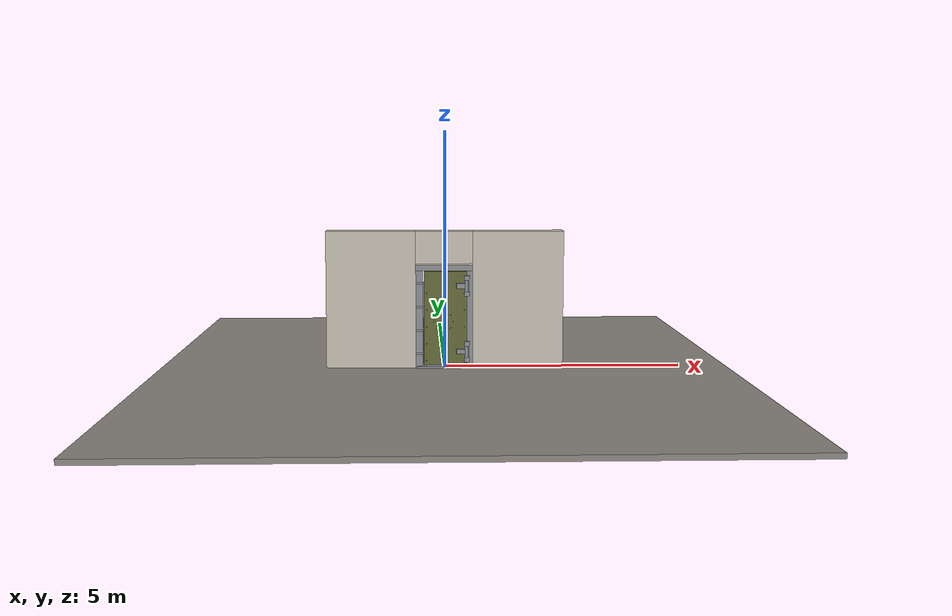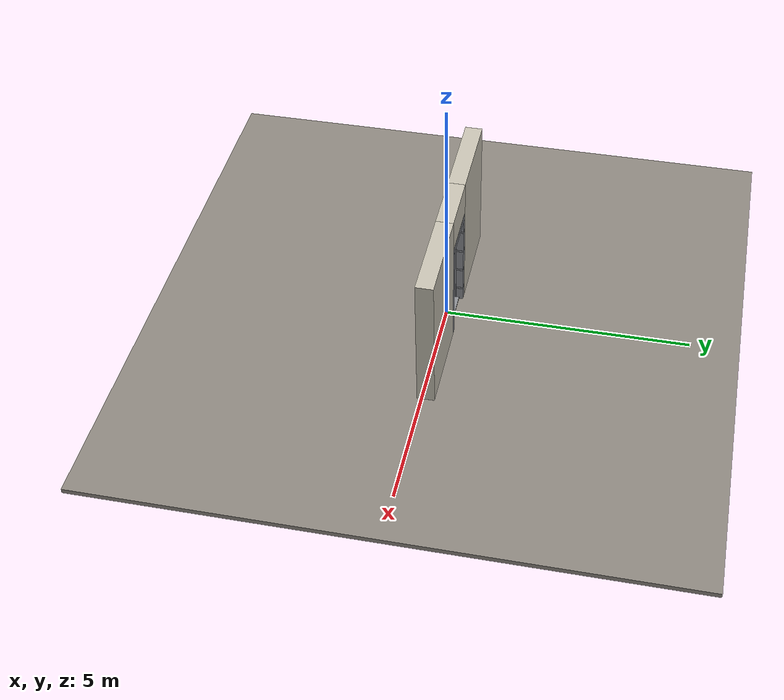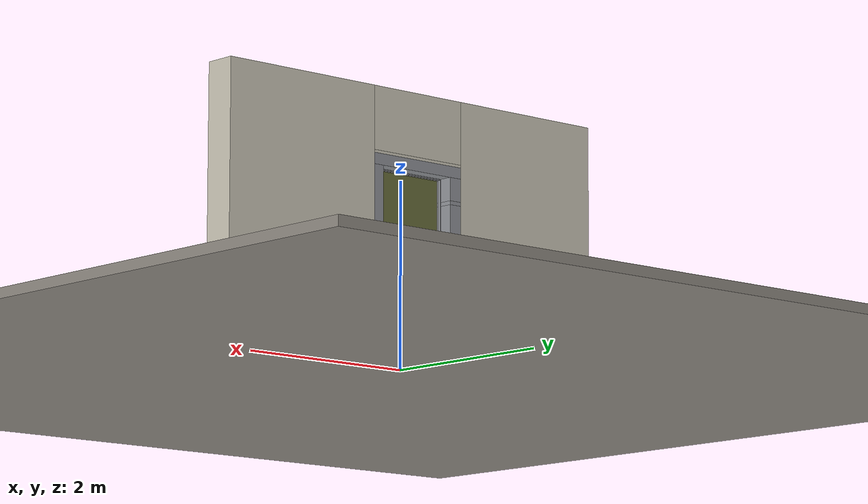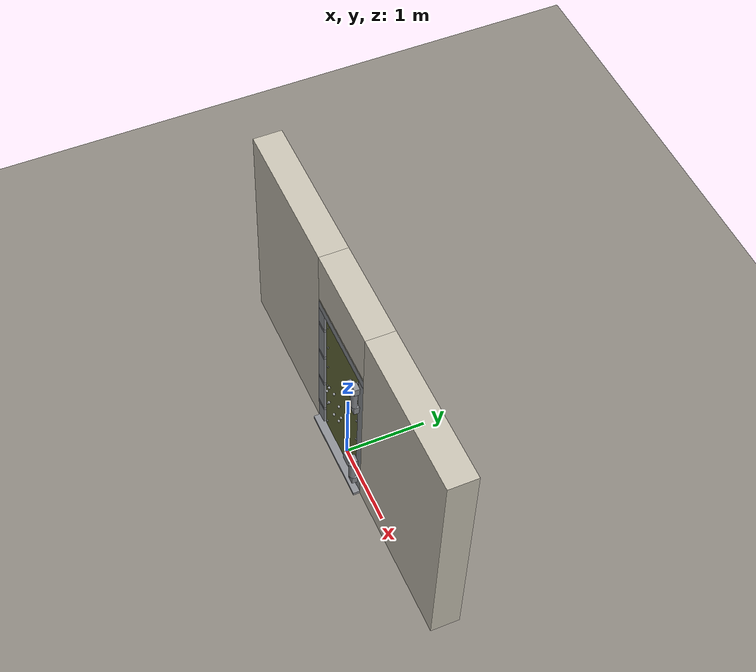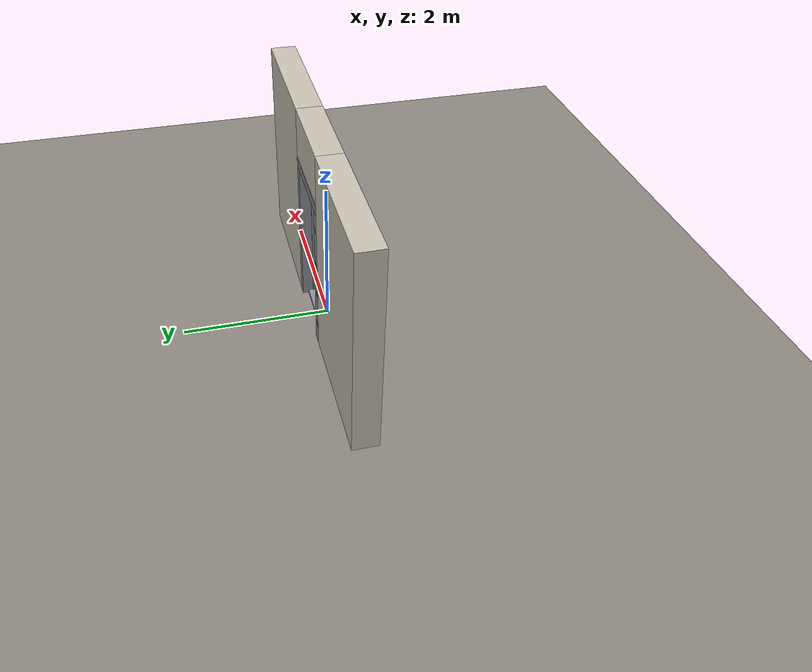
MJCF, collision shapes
<?xml version="1.0" ?>
<mujoco model="db0913_vault_full">
  <compiler angle="radian" meshdir="../../hardware" texturedir="../../textures" autolimits="true" inertiafromgeom="false"/>
  <option timestep="0.002" integrator="implicitfast" cone="elliptic" impratio="10" noslip_iterations="3">
    <flag multiccd="enable"/>
  </option>
  <size memory="16M"/>
  <default>
    <geom condim="4" solref="0.005 1" solimp="0.95 0.99 0.001"/>
    <joint solreflimit="0.005 1" solimplimit="0.95 0.99 0.001"/>
    <tendon solreflimit="0.005 1"/>
    <equality solref="0.002 1"/>
  </default>
  <visual>
    <headlight ambient="0.4 0.4 0.4" diffuse="0.7 0.7 0.7" specular="0.2 0.2 0.2"/>
    <quality shadowsize="4096"/>
    <map znear="0.01" zfar="60"/>
  </visual>
  <asset>
    <mesh name="wheel_3a0bfbe305" file="wheel_3a0bfbe305.obj"/>
    <material name="mat_floor" rgba="0.55 0.53 0.5 1" specular="0.2" shininess="0.15" reflectance="0"/>
    <material name="mat_wall" rgba="0.78 0.76 0.7 1" specular="0.2" shininess="0.1" reflectance="0"/>
    <material name="mat_leaf" rgba="0.4 0.42 0.22 1" specular="0.23" shininess="0.56" reflectance="0.02"/>
    <material name="mat_rivet" rgba="0.55 0.56 0.58 1" specular="0.8" shininess="0.55" reflectance="0.4"/>
    <material name="mat_op_stainless" rgba="0.75 0.76 0.77 1" specular="0.8" shininess="0.65" reflectance="0.4"/>
    <material name="mat_trim" rgba="0.85 0.66 0.3 1" specular="0.8" shininess="0.75" reflectance="0.4"/>
    <material name="mat_vault_bolt" rgba="0.75 0.76 0.77 1" specular="0.8" shininess="0.65" reflectance="0.4"/>
    <material name="mat_frame" rgba="0.55 0.56 0.58 1" specular="0.8" shininess="0.55" reflectance="0.4"/>
    <material name="mat_seal" rgba="0.1 0.1 0.1 1" specular="0.2" shininess="0.1" reflectance="0"/>
    <material name="mat_hinge" rgba="0.55 0.56 0.58 1" specular="0.8" shininess="0.55" reflectance="0.4"/>
    <texture name="skybox" type="skybox" builtin="gradient" rgb1="0.6 0.7 0.85" rgb2="0.9 0.92 0.95" width="256" height="256"/>
  </asset>
  <worldbody>
    <light name="sun" pos="1.5 -2.5 4" dir="-0.3 0.5 -0.8" directional="true" diffuse="0.8 0.8 0.8" specular="0.3 0.3 0.3" castshadow="true"/>
    <light name="fill" pos="-1.5 2.5 3" dir="0.3 -0.5 -0.7" directional="true" diffuse="0.35 0.35 0.4" castshadow="false"/>
    <camera name="robot_view" pos="0 -2.485625 1.753375" xyaxes="1 0 0 0 0.26963 0.962964" fovy="52"/>
    <camera name="far_view" pos="0 2.645625 1.753375" xyaxes="-1 0 0 0 -0.26963 0.962964" fovy="52"/>
    <camera name="iso" pos="-1.949875 -2.075125 2.163875" xyaxes="0.741536 -0.670913 0 0.242917 0.268487 0.932151" fovy="46"/>
    <camera name="detail_handle" pos="0.1465 -0.955 1.48" xyaxes="0.97561 0.219512 0 -0.070934 0.315262 0.94635" fovy="38"/>
    <geom name="floor" type="box" size="6 6 0.05" pos="0 0 -0.05" material="mat_floor" group="0" contype="1" conaffinity="1" friction="0.8 0.005 0.0001" density="2400"/>
    <geom name="wall_left" type="box" size="0.94125 0.175 1.45" pos="-1.55875 0.08 1.45" material="mat_wall" group="0" contype="1" conaffinity="1" friction="0.6 0.005 0.0001" density="800"/>
    <geom name="wall_right" type="box" size="0.95625 0.175 1.45" pos="1.54375 0.08 1.45" material="mat_wall" group="0" contype="1" conaffinity="1" friction="0.6 0.005 0.0001" density="800"/>
    <geom name="wall_header" type="box" size="0.6025 0.175 0.34" pos="-0.015 0.08 2.56" material="mat_wall" group="0" contype="1" conaffinity="1" friction="0.6 0.005 0.0001" density="800"/>
    <geom name="jamb_hinge" type="box" size="0.06 0.175 1.035" pos="0.5275 0.08 1.035" material="mat_frame" group="0" contype="1" conaffinity="1" friction="0.6 0.005 0.0001" density="300"/>
    <geom name="strike_300_wall_n" type="box" size="0.075 0.1185 0.021" pos="-0.5425 0.1365 0.3" material="mat_frame" group="0" contype="1" conaffinity="1" friction="0.6 0.005 0.0001" density="300"/>
    <geom name="strike_300_wall_p" type="box" size="0.075 0.0385 0.021" pos="-0.5425 -0.0565 0.3" material="mat_frame" group="0" contype="1" conaffinity="1" friction="0.6 0.005 0.0001" density="300"/>
    <geom name="strike_300_back" type="box" size="0.0395 0.018 0.021" pos="-0.578 0 0.3" material="mat_frame" group="0" contype="1" conaffinity="1" friction="0.6 0.005 0.0001" density="300"/>
    <geom name="strike_800_wall_n" type="box" size="0.075 0.1185 0.021" pos="-0.5425 0.1365 0.8" material="mat_frame" group="0" contype="1" conaffinity="1" friction="0.6 0.005 0.0001" density="300"/>
    <geom name="strike_800_wall_p" type="box" size="0.075 0.0385 0.021" pos="-0.5425 -0.0565 0.8" material="mat_frame" group="0" contype="1" conaffinity="1" friction="0.6 0.005 0.0001" density="300"/>
    <geom name="strike_800_back" type="box" size="0.0395 0.018 0.021" pos="-0.578 0 0.8" material="mat_frame" group="0" contype="1" conaffinity="1" friction="0.6 0.005 0.0001" density="300"/>
    <geom name="strike_1300_wall_n" type="box" size="0.075 0.1185 0.021" pos="-0.5425 0.1365 1.3" material="mat_frame" group="0" contype="1" conaffinity="1" friction="0.6 0.005 0.0001" density="300"/>
    <geom name="strike_1300_wall_p" type="box" size="0.075 0.0385 0.021" pos="-0.5425 -0.0565 1.3" material="mat_frame" group="0" contype="1" conaffinity="1" friction="0.6 0.005 0.0001" density="300"/>
    <geom name="strike_1300_back" type="box" size="0.0395 0.018 0.021" pos="-0.578 0 1.3" material="mat_frame" group="0" contype="1" conaffinity="1" friction="0.6 0.005 0.0001" density="300"/>
    <geom name="strike_1800_wall_n" type="box" size="0.075 0.1185 0.021" pos="-0.5425 0.1365 1.8" material="mat_frame" group="0" contype="1" conaffinity="1" friction="0.6 0.005 0.0001" density="300"/>
    <geom name="strike_1800_wall_p" type="box" size="0.075 0.0385 0.021" pos="-0.5425 -0.0565 1.8" material="mat_frame" group="0" contype="1" conaffinity="1" friction="0.6 0.005 0.0001" density="300"/>
    <geom name="strike_1800_back" type="box" size="0.0395 0.018 0.021" pos="-0.578 0 1.8" material="mat_frame" group="0" contype="1" conaffinity="1" friction="0.6 0.005 0.0001" density="300"/>
    <geom name="jamb_strike_0" type="box" size="0.075 0.175 0.1395" pos="-0.5425 0.08 0.1395" material="mat_frame" group="0" contype="1" conaffinity="1" friction="0.6 0.005 0.0001" density="300"/>
    <geom name="jamb_strike_1" type="box" size="0.075 0.175 0.229" pos="-0.5425 0.08 0.55" material="mat_frame" group="0" contype="1" conaffinity="1" friction="0.6 0.005 0.0001" density="300"/>
    <geom name="jamb_strike_2" type="box" size="0.075 0.175 0.229" pos="-0.5425 0.08 1.05" material="mat_frame" group="0" contype="1" conaffinity="1" friction="0.6 0.005 0.0001" density="300"/>
    <geom name="jamb_strike_3" type="box" size="0.075 0.175 0.229" pos="-0.5425 0.08 1.55" material="mat_frame" group="0" contype="1" conaffinity="1" friction="0.6 0.005 0.0001" density="300"/>
    <geom name="jamb_strike_4" type="box" size="0.075 0.175 0.1245" pos="-0.5425 0.08 1.9455" material="mat_frame" group="0" contype="1" conaffinity="1" friction="0.6 0.005 0.0001" density="300"/>
    <geom name="jamb_head" type="box" size="0.6025 0.175 0.06" pos="-0.015 0.08 2.13" material="mat_frame" group="0" contype="1" conaffinity="1" friction="0.6 0.005 0.0001" density="300"/>
    <geom name="head_stud" type="box" size="0.6025 0.175 0.015" pos="-0.015 0.08 2.205" material="mat_wall" group="0" contype="1" conaffinity="1" friction="0.6 0.005 0.0001" density="500"/>
    <geom name="stop_hinge" type="box" size="0.0055 0.016 1.035" pos="0.462 0.0915 1.035" material="mat_frame" group="0" contype="1" conaffinity="1" friction="0.6 0.005 0.0001" density="300"/>
    <geom name="stop_strike" type="box" size="0.0055 0.016 1.035" pos="-0.462 0.0915 1.035" material="mat_frame" group="0" contype="1" conaffinity="1" friction="0.6 0.005 0.0001" density="300"/>
    <geom name="stop_head" type="box" size="0.4675 0.016 0.0055" pos="0 0.0915 2.0645" material="mat_frame" group="0" contype="1" conaffinity="1" friction="0.6 0.005 0.0001" density="300"/>
    <geom name="seal_hinge" type="box" size="0.004 0.006 1.035" pos="0.4645 0.081 1.035" material="mat_seal" group="1" contype="0" conaffinity="0" density="1100"/>
    <geom name="seal_strike" type="box" size="0.004 0.006 1.035" pos="-0.4645 0.081 1.035" material="mat_seal" group="1" contype="0" conaffinity="0" density="1100"/>
    <geom name="seal_head" type="box" size="0.4475 0.006 0.008" pos="0 0.081 2.058" material="mat_seal" group="1" contype="0" conaffinity="0" density="1100"/>
    <geom name="sill_step" type="box" size="0.5875 0.175 0.02" pos="0 0 0.02" material="mat_frame" group="0" contype="1" conaffinity="1" friction="0.6 0.005 0.0001" density="7850"/>
    <geom name="hinge_0_bracket_b" type="box" size="0.05 0.0325 0.05" pos="0.4615 -0.1275 0.18" material="mat_hinge" group="1" contype="0" conaffinity="0" density="7850"/>
    <geom name="hinge_0_bracket_t" type="box" size="0.05 0.0325 0.05" pos="0.4615 -0.1275 0.52" material="mat_hinge" group="1" contype="0" conaffinity="0" density="7850"/>
    <geom name="hinge_1_bracket_b" type="box" size="0.05 0.0325 0.05" pos="0.4615 -0.1275 1.58" material="mat_hinge" group="1" contype="0" conaffinity="0" density="7850"/>
    <geom name="hinge_1_bracket_t" type="box" size="0.05 0.0325 0.05" pos="0.4615 -0.1275 1.92" material="mat_hinge" group="1" contype="0" conaffinity="0" density="7850"/>
    <site name="approach_point" pos="0 -1.5 0" quat="1 0 0 0" size="0.05" rgba="0.2 0.9 0.2 0.5" group="4"/>
    <site name="goal_point" pos="0 1.5 0" quat="1 0 0 0" size="0.05" rgba="0.2 0.9 0.2 0.5" group="4"/>
    <site name="door_plane_center" pos="0 0 1.035" quat="1 0 0 0" size="0.02" rgba="0.2 0.9 0.2 0.5" group="4"/>
    <body name="leaf" pos="0.4675 0 0">
      <inertial pos="-0.437804 -0.005972 1.05" mass="970.233782" quat="0.507923 0.491949 -0.507923 0.491949" diaginertia="71.62681696 333.12337767 399.98882799"/>
      <joint name="leaf_hinge" type="hinge" axis="0 0 1" pos="-0.006 -0.14 0" limited="true" range="0 1.745329" solreflimit="0.02 1" damping="0.286983" frictionloss="36.608037" armature="0.5"/>
      <geom name="leaf_slab" type="box" size="0.45 0.075 1" pos="-0.456 0 1.05" material="mat_leaf" group="0" contype="1" conaffinity="1" friction="0.45 0.005 0.0001" density="1"/>
      <geom name="leaf_rivet_0_0" type="sphere" size="0.012" pos="-0.056 -0.075 0.15" material="mat_rivet" group="2" contype="0" conaffinity="0" density="7850"/>
      <geom name="leaf_rivet_0_1" type="sphere" size="0.012" pos="-0.856 -0.075 0.15" material="mat_rivet" group="2" contype="0" conaffinity="0" density="7850"/>
      <geom name="leaf_rivet_1_0" type="sphere" size="0.012" pos="-0.056 -0.075 0.51" material="mat_rivet" group="2" contype="0" conaffinity="0" density="7850"/>
      <geom name="leaf_rivet_1_1" type="sphere" size="0.012" pos="-0.856 -0.075 0.51" material="mat_rivet" group="2" contype="0" conaffinity="0" density="7850"/>
      <geom name="leaf_rivet_2_0" type="sphere" size="0.012" pos="-0.056 -0.075 0.87" material="mat_rivet" group="2" contype="0" conaffinity="0" density="7850"/>
      <geom name="leaf_rivet_2_1" type="sphere" size="0.012" pos="-0.856 -0.075 0.87" material="mat_rivet" group="2" contype="0" conaffinity="0" density="7850"/>
      <geom name="leaf_rivet_3_0" type="sphere" size="0.012" pos="-0.056 -0.075 1.23" material="mat_rivet" group="2" contype="0" conaffinity="0" density="7850"/>
      <geom name="leaf_rivet_3_1" type="sphere" size="0.012" pos="-0.856 -0.075 1.23" material="mat_rivet" group="2" contype="0" conaffinity="0" density="7850"/>
      <geom name="leaf_rivet_4_0" type="sphere" size="0.012" pos="-0.056 -0.075 1.59" material="mat_rivet" group="2" contype="0" conaffinity="0" density="7850"/>
      <geom name="leaf_rivet_4_1" type="sphere" size="0.012" pos="-0.856 -0.075 1.59" material="mat_rivet" group="2" contype="0" conaffinity="0" density="7850"/>
      <geom name="leaf_rivet_5_0" type="sphere" size="0.012" pos="-0.056 -0.075 1.95" material="mat_rivet" group="2" contype="0" conaffinity="0" density="7850"/>
      <geom name="leaf_rivet_5_1" type="sphere" size="0.012" pos="-0.856 -0.075 1.95" material="mat_rivet" group="2" contype="0" conaffinity="0" density="7850"/>
      <geom name="hinge_0" type="cylinder" size="0.04 0.12" pos="-0.006 -0.14 0.35" material="mat_hinge" group="1" contype="0" conaffinity="0" density="7850"/>
      <geom name="hinge_0_arm" type="box" size="0.11 0.04 0.05" pos="-0.116 -0.115 0.35" material="mat_hinge" group="1" contype="0" conaffinity="0" density="7850"/>
      <geom name="hinge_1" type="cylinder" size="0.04 0.12" pos="-0.006 -0.14 1.75" material="mat_hinge" group="1" contype="0" conaffinity="0" density="7850"/>
      <geom name="hinge_1_arm" type="box" size="0.11 0.04 0.05" pos="-0.116 -0.115 1.75" material="mat_hinge" group="1" contype="0" conaffinity="0" density="7850"/>
      <body name="wheel" pos="-0.501 0 1">
        <inertial pos="0 -0.145638 0" mass="3.913848" quat="0.707107 -0.707107 0 0" diaginertia="0.063937187 0.063937187 0.115747168"/>
        <joint name="wheel_hinge" type="hinge" axis="0 1 0" limited="true" range="0 6.2832" damping="0.5" frictionloss="5" armature="0.01"/>
        <geom name="wheel_spindle" type="cylinder" size="0.006 0.075" pos="0 0 0" quat="0.707107 -0.707107 0 0" material="mat_op_stainless" group="1" contype="0" conaffinity="0" density="7850"/>
        <geom name="wheel_wheel_n" type="mesh" mesh="wheel_3a0bfbe305" pos="0 -0.075 0" quat="0 0 -0.707107 0.707107" material="mat_op_stainless" group="1" contype="0" conaffinity="0" density="3000"/>
        <geom name="wheel_wheel_col_0_n" type="sphere" size="0.015" pos="0.2 -0.155 0" material="mat_op_stainless" group="0" contype="1" conaffinity="1" friction="0.6 0.005 0.0001" density="3000"/>
        <geom name="wheel_wheel_col_1_n" type="sphere" size="0.015" pos="0.141421 -0.155 0.141421" material="mat_op_stainless" group="0" contype="1" conaffinity="1" friction="0.6 0.005 0.0001" density="3000"/>
        <geom name="wheel_wheel_col_2_n" type="sphere" size="0.015" pos="0 -0.155 0.2" material="mat_op_stainless" group="0" contype="1" conaffinity="1" friction="0.6 0.005 0.0001" density="3000"/>
        <geom name="wheel_wheel_col_3_n" type="sphere" size="0.015" pos="-0.141421 -0.155 0.141421" material="mat_op_stainless" group="0" contype="1" conaffinity="1" friction="0.6 0.005 0.0001" density="3000"/>
        <geom name="wheel_wheel_col_4_n" type="sphere" size="0.015" pos="-0.2 -0.155 0" material="mat_op_stainless" group="0" contype="1" conaffinity="1" friction="0.6 0.005 0.0001" density="3000"/>
        <geom name="wheel_wheel_col_5_n" type="sphere" size="0.015" pos="-0.141421 -0.155 -0.141421" material="mat_op_stainless" group="0" contype="1" conaffinity="1" friction="0.6 0.005 0.0001" density="3000"/>
        <geom name="wheel_wheel_col_6_n" type="sphere" size="0.015" pos="0 -0.155 -0.2" material="mat_op_stainless" group="0" contype="1" conaffinity="1" friction="0.6 0.005 0.0001" density="3000"/>
        <geom name="wheel_wheel_col_7_n" type="sphere" size="0.015" pos="0.141421 -0.155 -0.141421" material="mat_op_stainless" group="0" contype="1" conaffinity="1" friction="0.6 0.005 0.0001" density="3000"/>
        <site name="wheel_grip_n" pos="0 -0.155 0.2" quat="1 0 0 0" size="0.012" rgba="0.2 0.9 0.2 0.5" group="4"/>
      </body>
      <body name="bolt_0" pos="-0.906 0 0.3">
        <inertial pos="0.0075 0 0" mass="0.848093" quat="0 0 -0.707107 0.707107" diaginertia="0.000105108 0.001339839 0.001339839"/>
        <joint name="bolt_0_slide" type="slide" axis="1 0 0" limited="true" range="0 0.065" damping="20" frictionloss="25" armature="0.1"/>
        <geom name="bolt_0_geom" type="capsule" size="0.016 0.0565" pos="0.0075 0 0" quat="0.707107 0 -0.707107 0" material="mat_vault_bolt" group="0" contype="1" conaffinity="1" friction="0.6 0.005 0.0001" density="7850"/>
      </body>
      <body name="bolt_1" pos="-0.906 0 0.8">
        <inertial pos="0.0075 0 0" mass="0.848093" quat="0 0 -0.707107 0.707107" diaginertia="0.000105108 0.001339839 0.001339839"/>
        <joint name="bolt_1_slide" type="slide" axis="1 0 0" limited="true" range="0 0.065" damping="20" frictionloss="25" armature="0.1"/>
        <geom name="bolt_1_geom" type="capsule" size="0.016 0.0565" pos="0.0075 0 0" quat="0.707107 0 -0.707107 0" material="mat_vault_bolt" group="0" contype="1" conaffinity="1" friction="0.6 0.005 0.0001" density="7850"/>
      </body>
      <body name="bolt_2" pos="-0.906 0 1.3">
        <inertial pos="0.0075 0 0" mass="0.848093" quat="0 0 -0.707107 0.707107" diaginertia="0.000105108 0.001339839 0.001339839"/>
        <joint name="bolt_2_slide" type="slide" axis="1 0 0" limited="true" range="0 0.065" damping="20" frictionloss="25" armature="0.1"/>
        <geom name="bolt_2_geom" type="capsule" size="0.016 0.0565" pos="0.0075 0 0" quat="0.707107 0 -0.707107 0" material="mat_vault_bolt" group="0" contype="1" conaffinity="1" friction="0.6 0.005 0.0001" density="7850"/>
      </body>
      <body name="bolt_3" pos="-0.906 0 1.8">
        <inertial pos="0.0075 0 0" mass="0.848093" quat="0 0 -0.707107 0.707107" diaginertia="0.000105108 0.001339839 0.001339839"/>
        <joint name="bolt_3_slide" type="slide" axis="1 0 0" limited="true" range="0 0.065" damping="20" frictionloss="25" armature="0.1"/>
        <geom name="bolt_3_geom" type="capsule" size="0.016 0.0565" pos="0.0075 0 0" quat="0.707107 0 -0.707107 0" material="mat_vault_bolt" group="0" contype="1" conaffinity="1" friction="0.6 0.005 0.0001" density="7850"/>
      </body>
    </body>
  </worldbody>
  <equality>
    <joint name="wheel_bolt_0" joint1="bolt_0_slide" joint2="wheel_hinge" polycoef="0 0.010345 0 0 0" active="true"/>
    <joint name="wheel_bolt_1" joint1="bolt_1_slide" joint2="wheel_hinge" polycoef="0 0.010345 0 0 0" active="true"/>
    <joint name="wheel_bolt_2" joint1="bolt_2_slide" joint2="wheel_hinge" polycoef="0 0.010345 0 0 0" active="true"/>
    <joint name="wheel_bolt_3" joint1="bolt_3_slide" joint2="wheel_hinge" polycoef="0 0.010345 0 0 0" active="true"/>
  </equality>
  <sensor>
    <jointpos name="leaf_hinge_pos" joint="leaf_hinge"/>
    <jointvel name="leaf_hinge_vel" joint="leaf_hinge"/>
    <jointpos name="wheel_hinge_pos" joint="wheel_hinge"/>
    <jointvel name="wheel_hinge_vel" joint="wheel_hinge"/>
    <jointpos name="bolt_0_slide_pos" joint="bolt_0_slide"/>
    <jointvel name="bolt_0_slide_vel" joint="bolt_0_slide"/>
    <jointpos name="bolt_1_slide_pos" joint="bolt_1_slide"/>
    <jointvel name="bolt_1_slide_vel" joint="bolt_1_slide"/>
    <jointpos name="bolt_2_slide_pos" joint="bolt_2_slide"/>
    <jointvel name="bolt_2_slide_vel" joint="bolt_2_slide"/>
    <jointpos name="bolt_3_slide_pos" joint="bolt_3_slide"/>
    <jointvel name="bolt_3_slide_vel" joint="bolt_3_slide"/>
  </sensor>
</mujoco>
